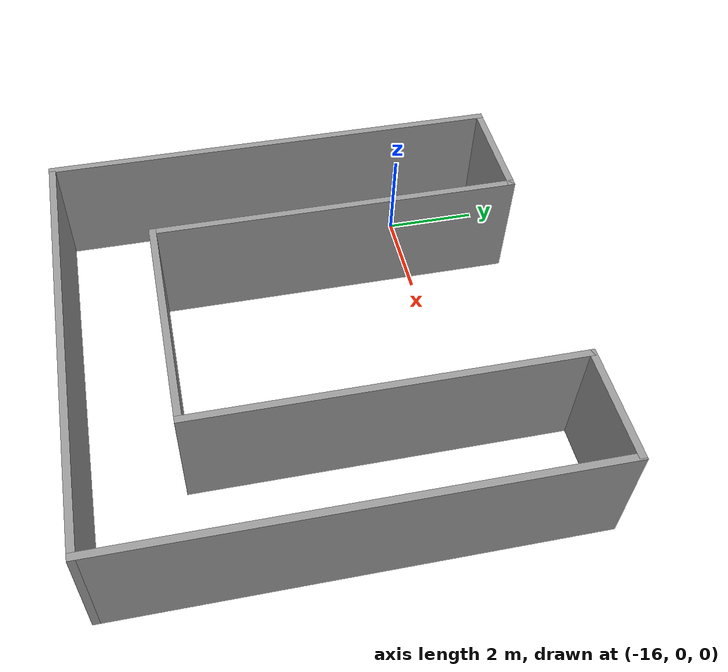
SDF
<?xml version='1.0'?>
<sdf version='1.6'>
  <model name='mybuilding'>
    <pose frame=''>-11.9374 -2.78789 0 0 -0 0</pose>
    <link name='Wall_10'>
      <collision name='Wall_10_Collision'>
        <geometry>
          <box>
            <size>2.5 0.15 2.5</size>
          </box>
        </geometry>
        <pose frame=''>0 0 1.25 0 -0 0</pose>
      </collision>
      <visual name='Wall_10_Visual'>
        <pose frame=''>0 0 1.25 0 -0 0</pose>
        <geometry>
          <box>
            <size>2.5 0.15 2.5</size>
          </box>
        </geometry>
        <material>
          <script>
            <uri>file://media/materials/scripts/gazebo.material</uri>
            <name>Gazebo/Grey</name>
          </script>
          <ambient>1 1 1 1</ambient>
        </material>
        <meta>
          <layer>0</layer>
        </meta>
      </visual>
      <pose frame=''>-3.6 4.925 0 0 -0 0</pose>
    </link>
    <link name='Wall_12'>
      <collision name='Wall_12_Collision'>
        <geometry>
          <box>
            <size>8 0.15 2.5</size>
          </box>
        </geometry>
        <pose frame=''>0 0 1.25 0 -0 0</pose>
      </collision>
      <visual name='Wall_12_Visual'>
        <pose frame=''>0 0 1.25 0 -0 0</pose>
        <geometry>
          <box>
            <size>8 0.15 2.5</size>
          </box>
        </geometry>
        <material>
          <script>
            <uri>file://media/materials/scripts/gazebo.material</uri>
            <name>Gazebo/Grey</name>
          </script>
          <ambient>1 1 1 1</ambient>
        </material>
        <meta>
          <layer>0</layer>
        </meta>
      </visual>
      <pose frame=''>-2.425 1 0 0 -0 -1.5708</pose>
    </link>
    <link name='Wall_13'>
      <collision name='Wall_13_Collision'>
        <geometry>
          <box>
            <size>5 0.15 2.5</size>
          </box>
        </geometry>
        <pose frame=''>0 0 1.25 0 -0 0</pose>
      </collision>
      <visual name='Wall_13_Visual'>
        <pose frame=''>0 0 1.25 0 -0 0</pose>
        <geometry>
          <box>
            <size>5 0.15 2.5</size>
          </box>
        </geometry>
        <material>
          <script>
            <uri>file://media/materials/scripts/gazebo.material</uri>
            <name>Gazebo/Grey</name>
          </script>
          <ambient>1 1 1 1</ambient>
        </material>
        <meta>
          <layer>0</layer>
        </meta>
      </visual>
      <pose frame=''>-0 -2.925 0 0 -0 0</pose>
    </link>
    <link name='Wall_14'>
      <collision name='Wall_14_Collision'>
        <geometry>
          <box>
            <size>8 0.15 2.5</size>
          </box>
        </geometry>
        <pose frame=''>0 0 1.25 0 -0 0</pose>
      </collision>
      <visual name='Wall_14_Visual'>
        <pose frame=''>0 0 1.25 0 -0 0</pose>
        <geometry>
          <box>
            <size>8 0.15 2.5</size>
          </box>
        </geometry>
        <material>
          <script>
            <uri>file://media/materials/scripts/gazebo.material</uri>
            <name>Gazebo/Grey</name>
          </script>
          <ambient>1 1 1 1</ambient>
        </material>
        <meta>
          <layer>0</layer>
        </meta>
      </visual>
      <pose frame=''>2.425 1 0 0 -0 1.5708</pose>
    </link>
    <link name='Wall_15'>
      <collision name='Wall_15_Collision'>
        <geometry>
          <box>
            <size>2.5 0.15 2.5</size>
          </box>
        </geometry>
        <pose frame=''>0 0 1.25 0 -0 0</pose>
      </collision>
      <visual name='Wall_15_Visual'>
        <pose frame=''>0 0 1.25 0 -0 0</pose>
        <geometry>
          <box>
            <size>2.5 0.15 2.5</size>
          </box>
        </geometry>
        <material>
          <script>
            <uri>file://media/materials/scripts/gazebo.material</uri>
            <name>Gazebo/Grey</name>
          </script>
          <ambient>1 1 1 1</ambient>
        </material>
        <meta>
          <layer>0</layer>
        </meta>
      </visual>
      <pose frame=''>3.6 4.925 0 0 -0 0</pose>
    </link>
    <link name='Wall_16'>
      <collision name='Wall_16_Collision'>
        <geometry>
          <box>
            <size>10 0.15 2.5</size>
          </box>
        </geometry>
        <pose frame=''>0 0 1.25 0 -0 0</pose>
      </collision>
      <visual name='Wall_16_Visual'>
        <pose frame=''>0 0 1.25 0 -0 0</pose>
        <geometry>
          <box>
            <size>10 0.15 2.5</size>
          </box>
        </geometry>
        <material>
          <script>
            <uri>file://media/materials/scripts/gazebo.material</uri>
            <name>Gazebo/Grey</name>
          </script>
          <ambient>1 1 1 1</ambient>
        </material>
        <meta>
          <layer>0</layer>
        </meta>
      </visual>
      <pose frame=''>4.775 0 0 0 -0 -1.5708</pose>
    </link>
    <link name='Wall_17'>
      <collision name='Wall_17_Collision'>
        <geometry>
          <box>
            <size>9.7 0.15 2.5</size>
          </box>
        </geometry>
        <pose frame=''>0 0 1.25 0 -0 0</pose>
      </collision>
      <visual name='Wall_17_Visual'>
        <pose frame=''>0 0 1.25 0 -0 0</pose>
        <geometry>
          <box>
            <size>9.7 0.15 2.5</size>
          </box>
        </geometry>
        <material>
          <script>
            <uri>file://media/materials/scripts/gazebo.material</uri>
            <name>Gazebo/Grey</name>
          </script>
          <ambient>1 1 1 1</ambient>
        </material>
        <meta>
          <layer>0</layer>
        </meta>
      </visual>
      <pose frame=''>-0 -4.925 0 0 -0 3.14159</pose>
    </link>
    <link name='Wall_9'>
      <collision name='Wall_9_Collision'>
        <geometry>
          <box>
            <size>10 0.15 2.5</size>
          </box>
        </geometry>
        <pose frame=''>0 0 1.25 0 -0 0</pose>
      </collision>
      <visual name='Wall_9_Visual'>
        <pose frame=''>0 0 1.25 0 -0 0</pose>
        <geometry>
          <box>
            <size>10 0.15 2.5</size>
          </box>
        </geometry>
        <material>
          <script>
            <uri>file://media/materials/scripts/gazebo.material</uri>
            <name>Gazebo/Grey</name>
          </script>
          <ambient>1 1 1 1</ambient>
        </material>
        <meta>
          <layer>0</layer>
        </meta>
      </visual>
      <pose frame=''>-4.775 0 0 0 -0 1.5708</pose>
    </link>
    <static>1</static>
  </model>
</sdf>
